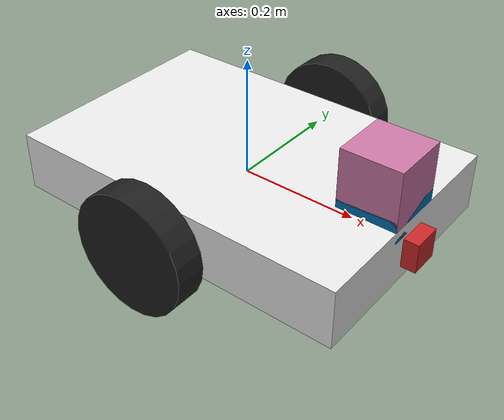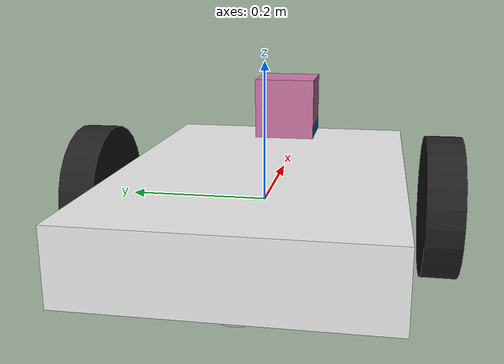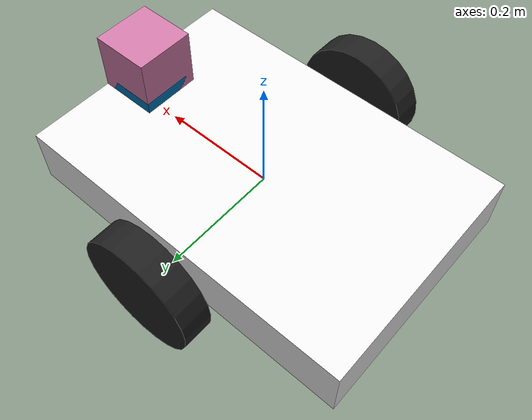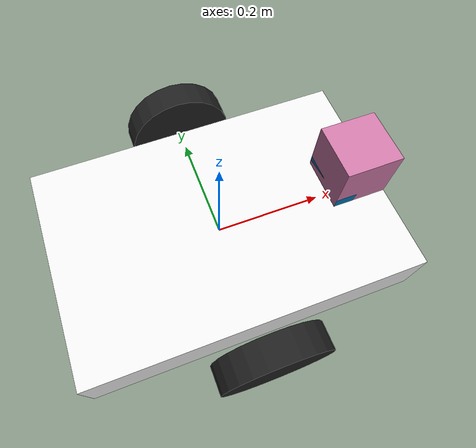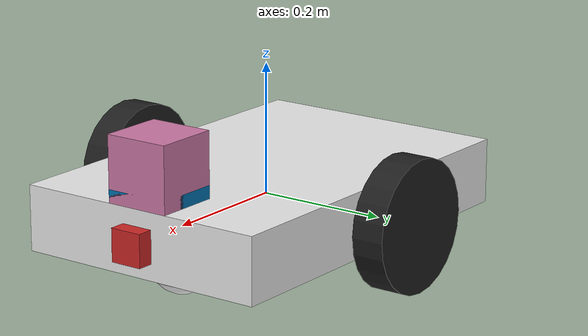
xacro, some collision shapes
<?xml version='1.0'?>

<robot name="my_robot" xmlns:xacro="http://www.ros.org/wiki/xacro">
  <xacro:include filename="$(find my_robot)/urdf/my_robot.gazebo" />
  <link name="robot_footprint"></link>

  <joint name="robot_footprint_joint" type="fixed">
    <origin xyz="0 0 0" rpy="0 0 0" />
    <parent link="robot_footprint" />
    <child link="chassis" />
  </joint>

                                                                    <!-- CHASSIS -->
  <link name="chassis">
    <pose>0 0 0.1 0 0 0</pose>

    <inertial>
      <mass value="15.0"/>
      <origin xyz="0.0 0 0" rpy="0 0 0" />
      <inertia
        ixx="0.1" ixy="0" ixz="0"
        iyy="0.1" iyz="0"
        izz="0.1"
      />
    </inertial>

    <collision name="collision">
      <origin xyz="0 0 0" rpy="0 0 0" />
      <geometry>
        <box size=".6 .4 .1" />
      </geometry>
    </collision>

    <visual name='chassis_visual'>
      <origin xyz="0 0 0" rpy="0 0 0" />
      <geometry>
        <box size=".6 .4 .1" />
      </geometry>
    </visual>

   <collision name="back_caster_collision">
      <origin xyz="-0.2 0 -0.05" rpy="0 0 0" />
      <geometry>
        <sphere radius="0.0499" />
      </geometry>
    </collision>

   <visual name="back_caster_visual">
      <origin xyz="-0.2 0 -0.05" rpy="0 0 0" />
      <geometry>
        <sphere radius="0.0499" />
      </geometry>
    </visual>

   <collision name="front_caster_collision">
      <origin xyz="0.2 0 -0.05" rpy="0 0 0" />
      <geometry>
        <sphere radius="0.0499" />
      </geometry>
    </collision>

   <visual name="front_caster_visual">
      <origin xyz="0.2 0 -0.05" rpy="0 0 0" />
      <geometry>
        <sphere radius="0.0499" />
      </geometry>
    </visual>
  </link>

                                                                <!-- LEFT WHEEL -->
  <link name="left_wheel">
    <inertial>
        <mass value="5" />
        <origin xyz="0 0 0" rpy="0 1.5707 1.5707" />
        <inertia
            ixx="0.1" ixy="0" ixz="0"
            iyy="0.1" iyz="0"
            izz="0.1" />
        </inertial>
    <visual name="left_wheel_visual">
        <origin xyz="0 0 0" rpy="0 1.5707 1.5707"/>
        <geometry>
            <cylinder radius="0.1" length="0.05" />
        </geometry>
    </visual>
    <collision name="left_wheel_collision">
        <origin xyz="0 0 0" rpy="0 1.5707 1.5707"/>
        <geometry>
            <cylinder radius="0.1" length="0.05" />
        </geometry>
    </collision>
  </link>
                                                                <!--RIGHT WHEEL -->
  <link name="right_wheel">
    <inertial>
        <mass value="5" />
        <origin xyz="0 0 0" rpy="0 1.5707 1.5707" />
        <inertia
            ixx="0.1" ixy="0" ixz="0"
            iyy="0.1" iyz="0"
            izz="0.1" />
        </inertial>
    <visual name="right_wheel_visual">
        <origin xyz="0 0 0" rpy="0 1.5707 1.5707"/>
        <geometry>
            <cylinder radius="0.1" length="0.05" />
        </geometry>
    </visual>
    <collision name="right_wheel_collision">
        <origin xyz="0 0 0" rpy="0 1.5707 1.5707"/>
        <geometry>
            <cylinder radius="0.1" length="0.05" />
        </geometry>
    </collision>
  </link>

<link name="upper_chassis">
    <pose>0 0 0.1 0 0 0</pose>

    <inertial>
      <mass value="2.0"/>
      <origin xyz="0.0 0 0" rpy="0 0 0" />
      <inertia
        ixx="0.1" ixy="0" ixz="0"
        iyy="0.1" iyz="0"
        izz="0.1"
      />
    </inertial>

    <collision name="upper_chassis_collision">
      <origin xyz="0 0 0" rpy="0 0 0" />
      <geometry>
        <box size=".1 .1 .04" />
      </geometry>
    </collision>

    <visual name='upper_chassis_visual'>
      <origin xyz="0 0 0" rpy="0 0 0" />
      <geometry>
        <box size=".1 .1 .04" />
      </geometry>
    </visual>
  </link>

  <joint type="fixed" name="lf_u_support">
      <origin xyz="0.25 0 0.05" rpy="0 0 0" />
      <child link="upper_chassis" />
      <parent link="chassis" />
      <axis xyz="0 1 0" rpy="0 0 0" />
  </joint>

  <link name="camera">
      <inertial>
          <mass value="0.1" />
          <origin xyz="0 0 0" rpy="0 0 0" />
          <inertia
              ixx="1e-6" ixy="0" ixz="0"
              iyy="1e-6" iyz="0"
              izz="1e-6"
            />
      </inertial>

      <visual name="camera_visual">
          <origin xyz="0 0 0" rpy="0 0 0"/>
          <geometry>
              <box size="0.05 0.05 0.05" />
          </geometry>
      </visual>

      <collision name="camera_collision">
          <origin xyz="0 0 0" rpy="0 0 0"/>
          <geometry>
              <box size="0.05 0.05 0.05" />
          </geometry>
      </collision>

  </link>

  <link name="hokuyo">
      <inertial>
          <mass value="1e-5" />
          <origin xyz="0 0 0" rpy="0 0 0" />
          <inertia
              ixx="1e-6" ixy="0" ixz="0"
              iyy="1e-6" iyz="0"
              izz="1e-6"
              />
      </inertial>
      <visual name="hokuyo_visual" >
          <origin xyz="0 0 0" rpy="0 0 0" />
          <geometry>
              <mesh filename="package://my_robot/meshes/hokuyo.dae" />
          </geometry>
      </visual>
      <collision name="hokuyo_collision">
          <origin xyz="0 0 0" rpy="0 0 0" />
              <geometry>
                  <box size="0.1 0.1 0.1" />
              </geometry>
      </collision>
  </link>
  <joint type="continuous" name="left_wheel_hinge">
      <origin xyz="0 0.25 0" rpy="0 0 0" />
      <child link="left_wheel" />
      <parent link="chassis" />
      <axis xyz="0 1 0" rpy="0 0 0" />
      <limit effort="10000" velocity="1000" />
      <dynamics damping="1.0" friction="1.0" />
  </joint>

  <joint type="continuous" name="right_wheel_hinge">
      <origin xyz="0 -0.25 0" rpy="0 0 0" />
      <child link="right_wheel" />
      <parent link="chassis" />
      <axis xyz="0 1 0" rpy="0 0 0" />
      <limit effort="10000" velocity="1000" />
      <dynamics damping="1.0" friction="1.0" />
  </joint>

  <joint type="fixed" name="camera_joint">
      <origin xyz="0.3 0 0" rpy="0 0 0" />
      <child link="camera" />
      <parent link="chassis" />
      <axis xyz="0 1 0" rpy="0 0 0" />
  </joint>

  <joint type="fixed" name="hokuyo_joint">
      <origin xyz="0.25 0 0.1" rpy="0 0 0" />
      <child link="hokuyo" />
      <parent link="chassis" />
      <axis xyz="0 1 0" rpy="0 0 0" />
  </joint>

  <gazebo reference="left_wheel">
    <material>Gazebo/Black</material>
  </gazebo>
  <gazebo reference="right_wheel">
    <material>Gazebo/Black</material>
  </gazebo>
  <gazebo reference="chassis">
    <material>Gazebo/White</material>
  </gazebo>
  <gazebo reference="camera">
    <material>Gazebo/Red</material>
  </gazebo>
</robot>
